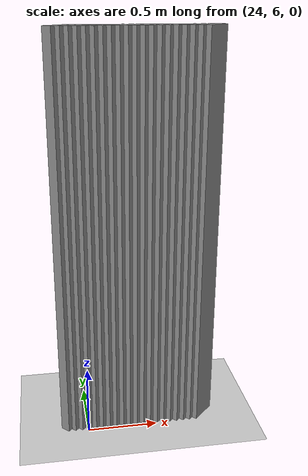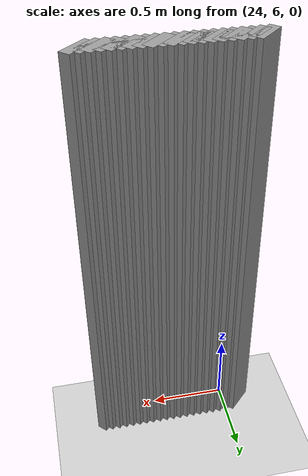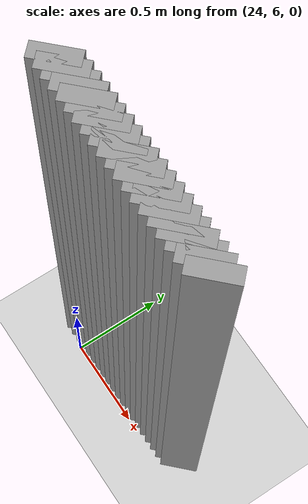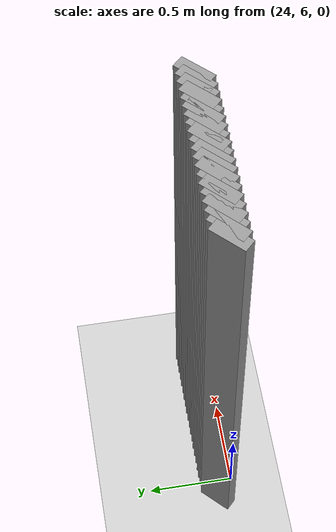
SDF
<sdf version="1.5">
 <world name="default">
  <include><uri>model://ground_plane</uri></include>
  <include><uri>model://sun</uri></include>
  <model name="grey_wall_4313">
   <static>1</static>
   <link name="link">
    <pose>23.9 6.1  1.4 0 0 -0.785398163397</pose>
    <collision name="collision"><geometry><box><size>0.0707106781187 .2  2.8</size></box></geometry></collision>
    <visual name="visual">
     <cast_shadows>0</cast_shadows>
     <geometry><box><size>0.0707106781187 .2  2.8</size></box></geometry>
     <material>
      <script>
       <uri>model://grey_wall/materials/scripts</uri>
       <uri>model://grey_wall/materials/textures</uri>
       <name>vrc/grey_wall</name>
      </script>
     </material>
    </visual>
   </link>
  </model>
  <model name="grey_wall_4314">
   <static>1</static>
   <link name="link">
    <pose>23.95 6.1  1.4 0 0 -0.785398163397</pose>
    <collision name="collision"><geometry><box><size>0.0707106781187 .2  2.8</size></box></geometry></collision>
    <visual name="visual">
     <cast_shadows>0</cast_shadows>
     <geometry><box><size>0.0707106781187 .2  2.8</size></box></geometry>
     <material>
      <script>
       <uri>model://grey_wall/materials/scripts</uri>
       <uri>model://grey_wall/materials/textures</uri>
       <name>vrc/grey_wall</name>
      </script>
     </material>
    </visual>
   </link>
  </model>
  <model name="grey_wall_4315">
   <static>1</static>
   <link name="link">
    <pose>24.0 6.1  1.4 0 0 -0.785398163397</pose>
    <collision name="collision"><geometry><box><size>0.0707106781187 .2  2.8</size></box></geometry></collision>
    <visual name="visual">
     <cast_shadows>0</cast_shadows>
     <geometry><box><size>0.0707106781187 .2  2.8</size></box></geometry>
     <material>
      <script>
       <uri>model://grey_wall/materials/scripts</uri>
       <uri>model://grey_wall/materials/textures</uri>
       <name>vrc/grey_wall</name>
      </script>
     </material>
    </visual>
   </link>
  </model>
  <model name="grey_wall_4316">
   <static>1</static>
   <link name="link">
    <pose>24.05 6.1  1.4 0 0 -0.785398163397</pose>
    <collision name="collision"><geometry><box><size>0.0707106781187 .2  2.8</size></box></geometry></collision>
    <visual name="visual">
     <cast_shadows>0</cast_shadows>
     <geometry><box><size>0.0707106781187 .2  2.8</size></box></geometry>
     <material>
      <script>
       <uri>model://grey_wall/materials/scripts</uri>
       <uri>model://grey_wall/materials/textures</uri>
       <name>vrc/grey_wall</name>
      </script>
     </material>
    </visual>
   </link>
  </model>
  <model name="grey_wall_4317">
   <static>1</static>
   <link name="link">
    <pose>24.1 6.1  1.4 0 0 -0.785398163397</pose>
    <collision name="collision"><geometry><box><size>0.0707106781187 .2  2.8</size></box></geometry></collision>
    <visual name="visual">
     <cast_shadows>0</cast_shadows>
     <geometry><box><size>0.0707106781187 .2  2.8</size></box></geometry>
     <material>
      <script>
       <uri>model://grey_wall/materials/scripts</uri>
       <uri>model://grey_wall/materials/textures</uri>
       <name>vrc/grey_wall</name>
      </script>
     </material>
    </visual>
   </link>
  </model>
  <model name="grey_wall_4318">
   <static>1</static>
   <link name="link">
    <pose>24.15 6.1  1.4 0 0 -0.785398163397</pose>
    <collision name="collision"><geometry><box><size>0.0707106781187 .2  2.8</size></box></geometry></collision>
    <visual name="visual">
     <cast_shadows>0</cast_shadows>
     <geometry><box><size>0.0707106781187 .2  2.8</size></box></geometry>
     <material>
      <script>
       <uri>model://grey_wall/materials/scripts</uri>
       <uri>model://grey_wall/materials/textures</uri>
       <name>vrc/grey_wall</name>
      </script>
     </material>
    </visual>
   </link>
  </model>
  <model name="grey_wall_4319">
   <static>1</static>
   <link name="link">
    <pose>24.2 6.1  1.4 0 0 -0.785398163397</pose>
    <collision name="collision"><geometry><box><size>0.0707106781187 .2  2.8</size></box></geometry></collision>
    <visual name="visual">
     <cast_shadows>0</cast_shadows>
     <geometry><box><size>0.0707106781187 .2  2.8</size></box></geometry>
     <material>
      <script>
       <uri>model://grey_wall/materials/scripts</uri>
       <uri>model://grey_wall/materials/textures</uri>
       <name>vrc/grey_wall</name>
      </script>
     </material>
    </visual>
   </link>
  </model>
  <model name="grey_wall_4320">
   <static>1</static>
   <link name="link">
    <pose>24.25 6.1  1.4 0 0 -0.785398163397</pose>
    <collision name="collision"><geometry><box><size>0.0707106781187 .2  2.8</size></box></geometry></collision>
    <visual name="visual">
     <cast_shadows>0</cast_shadows>
     <geometry><box><size>0.0707106781187 .2  2.8</size></box></geometry>
     <material>
      <script>
       <uri>model://grey_wall/materials/scripts</uri>
       <uri>model://grey_wall/materials/textures</uri>
       <name>vrc/grey_wall</name>
      </script>
     </material>
    </visual>
   </link>
  </model>
  <model name="grey_wall_4321">
   <static>1</static>
   <link name="link">
    <pose>24.3 6.1  1.4 0 0 -0.785398163397</pose>
    <collision name="collision"><geometry><box><size>0.0707106781187 .2  2.8</size></box></geometry></collision>
    <visual name="visual">
     <cast_shadows>0</cast_shadows>
     <geometry><box><size>0.0707106781187 .2  2.8</size></box></geometry>
     <material>
      <script>
       <uri>model://grey_wall/materials/scripts</uri>
       <uri>model://grey_wall/materials/textures</uri>
       <name>vrc/grey_wall</name>
      </script>
     </material>
    </visual>
   </link>
  </model>
  <model name="grey_wall_4322">
   <static>1</static>
   <link name="link">
    <pose>24.35 6.1  1.4 0 0 -0.785398163397</pose>
    <collision name="collision"><geometry><box><size>0.0707106781187 .2  2.8</size></box></geometry></collision>
    <visual name="visual">
     <cast_shadows>0</cast_shadows>
     <geometry><box><size>0.0707106781187 .2  2.8</size></box></geometry>
     <material>
      <script>
       <uri>model://grey_wall/materials/scripts</uri>
       <uri>model://grey_wall/materials/textures</uri>
       <name>vrc/grey_wall</name>
      </script>
     </material>
    </visual>
   </link>
  </model>
  <model name="grey_wall_4323">
   <static>1</static>
   <link name="link">
    <pose>24.4 6.1  1.4 0 0 -0.785398163397</pose>
    <collision name="collision"><geometry><box><size>0.0707106781187 .2  2.8</size></box></geometry></collision>
    <visual name="visual">
     <cast_shadows>0</cast_shadows>
     <geometry><box><size>0.0707106781187 .2  2.8</size></box></geometry>
     <material>
      <script>
       <uri>model://grey_wall/materials/scripts</uri>
       <uri>model://grey_wall/materials/textures</uri>
       <name>vrc/grey_wall</name>
      </script>
     </material>
    </visual>
   </link>
  </model>
  <model name="grey_wall_4324">
   <static>1</static>
   <link name="link">
    <pose>24.45 6.1  1.4 0 0 -0.785398163397</pose>
    <collision name="collision"><geometry><box><size>0.0707106781187 .2  2.8</size></box></geometry></collision>
    <visual name="visual">
     <cast_shadows>0</cast_shadows>
     <geometry><box><size>0.0707106781187 .2  2.8</size></box></geometry>
     <material>
      <script>
       <uri>model://grey_wall/materials/scripts</uri>
       <uri>model://grey_wall/materials/textures</uri>
       <name>vrc/grey_wall</name>
      </script>
     </material>
    </visual>
   </link>
  </model>
  <model name="grey_wall_4325">
   <static>1</static>
   <link name="link">
    <pose>24.5 6.1  1.4 0 0 -0.785398163397</pose>
    <collision name="collision"><geometry><box><size>0.0707106781187 .2  2.8</size></box></geometry></collision>
    <visual name="visual">
     <cast_shadows>0</cast_shadows>
     <geometry><box><size>0.0707106781187 .2  2.8</size></box></geometry>
     <material>
      <script>
       <uri>model://grey_wall/materials/scripts</uri>
       <uri>model://grey_wall/materials/textures</uri>
       <name>vrc/grey_wall</name>
      </script>
     </material>
    </visual>
   </link>
  </model>
  <model name="grey_wall_4326">
   <static>1</static>
   <link name="link">
    <pose>24.55 6.1  1.4 0 0 -0.785398163397</pose>
    <collision name="collision"><geometry><box><size>0.0707106781187 .2  2.8</size></box></geometry></collision>
    <visual name="visual">
     <cast_shadows>0</cast_shadows>
     <geometry><box><size>0.0707106781187 .2  2.8</size></box></geometry>
     <material>
      <script>
       <uri>model://grey_wall/materials/scripts</uri>
       <uri>model://grey_wall/materials/textures</uri>
       <name>vrc/grey_wall</name>
      </script>
     </material>
    </visual>
   </link>
  </model>
  <model name="grey_wall_4327">
   <static>1</static>
   <link name="link">
    <pose>24.6 6.1  1.4 0 0 -0.785398163397</pose>
    <collision name="collision"><geometry><box><size>0.0707106781187 .2  2.8</size></box></geometry></collision>
    <visual name="visual">
     <cast_shadows>0</cast_shadows>
     <geometry><box><size>0.0707106781187 .2  2.8</size></box></geometry>
     <material>
      <script>
       <uri>model://grey_wall/materials/scripts</uri>
       <uri>model://grey_wall/materials/textures</uri>
       <name>vrc/grey_wall</name>
      </script>
     </material>
    </visual>
   </link>
  </model>
  <model name="grey_wall_4328">
   <static>1</static>
   <link name="link">
    <pose>24.65 6.1  1.4 0 0 -0.785398163397</pose>
    <collision name="collision"><geometry><box><size>0.0707106781187 .2  2.8</size></box></geometry></collision>
    <visual name="visual">
     <cast_shadows>0</cast_shadows>
     <geometry><box><size>0.0707106781187 .2  2.8</size></box></geometry>
     <material>
      <script>
       <uri>model://grey_wall/materials/scripts</uri>
       <uri>model://grey_wall/materials/textures</uri>
       <name>vrc/grey_wall</name>
      </script>
     </material>
    </visual>
   </link>
  </model>
  <model name="grey_wall_4329">
   <static>1</static>
   <link name="link">
    <pose>24.7 6.1  1.4 0 0 -0.785398163397</pose>
    <collision name="collision"><geometry><box><size>0.0707106781187 .2  2.8</size></box></geometry></collision>
    <visual name="visual">
     <cast_shadows>0</cast_shadows>
     <geometry><box><size>0.0707106781187 .2  2.8</size></box></geometry>
     <material>
      <script>
       <uri>model://grey_wall/materials/scripts</uri>
       <uri>model://grey_wall/materials/textures</uri>
       <name>vrc/grey_wall</name>
      </script>
     </material>
    </visual>
   </link>
  </model>
  <model name="grey_wall_4330">
   <static>1</static>
   <link name="link">
    <pose>24.75 6.1  1.4 0 0 -0.785398163397</pose>
    <collision name="collision"><geometry><box><size>0.0707106781187 .2  2.8</size></box></geometry></collision>
    <visual name="visual">
     <cast_shadows>0</cast_shadows>
     <geometry><box><size>0.0707106781187 .2  2.8</size></box></geometry>
     <material>
      <script>
       <uri>model://grey_wall/materials/scripts</uri>
       <uri>model://grey_wall/materials/textures</uri>
       <name>vrc/grey_wall</name>
      </script>
     </material>
    </visual>
   </link>
  </model>
  <model name="grey_wall_4331">
   <static>1</static>
   <link name="link">
    <pose>24.8 6.1  1.4 0 0 -0.785398163397</pose>
    <collision name="collision"><geometry><box><size>0.0707106781187 .2  2.8</size></box></geometry></collision>
    <visual name="visual">
     <cast_shadows>0</cast_shadows>
     <geometry><box><size>0.0707106781187 .2  2.8</size></box></geometry>
     <material>
      <script>
       <uri>model://grey_wall/materials/scripts</uri>
       <uri>model://grey_wall/materials/textures</uri>
       <name>vrc/grey_wall</name>
      </script>
     </material>
    </visual>
   </link>
  </model>
  <model name="grey_wall_4332">
   <static>1</static>
   <link name="link">
    <pose>24.85 6.1  1.4 0 0 -0.785398163397</pose>
    <collision name="collision"><geometry><box><size>0.0707106781187 .2  2.8</size></box></geometry></collision>
    <visual name="visual">
     <cast_shadows>0</cast_shadows>
     <geometry><box><size>0.0707106781187 .2  2.8</size></box></geometry>
     <material>
      <script>
       <uri>model://grey_wall/materials/scripts</uri>
       <uri>model://grey_wall/materials/textures</uri>
       <name>vrc/grey_wall</name>
      </script>
     </material>
    </visual>
   </link>
  </model>
 </world>
</sdf>
